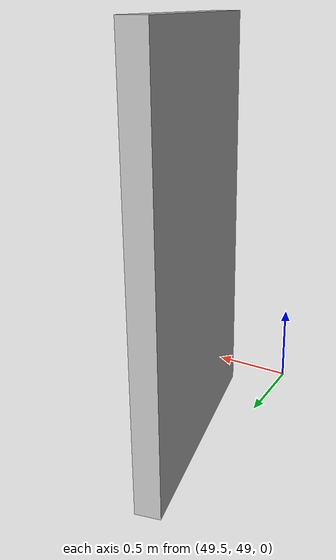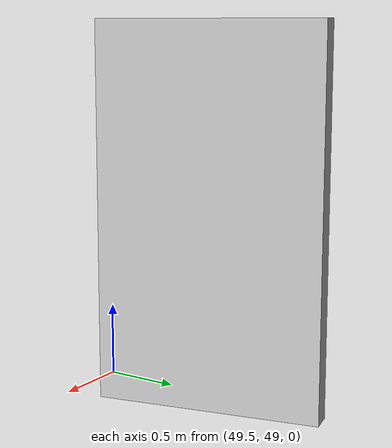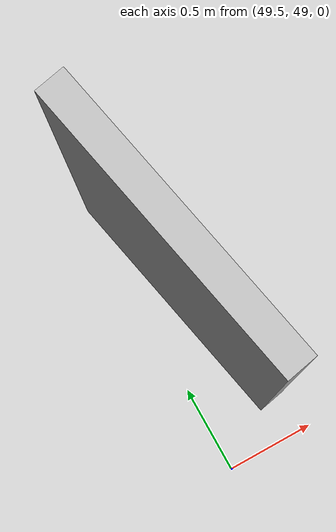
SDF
<?xml version="1.0" ?>
<sdf version="1.6">
  <model name="sps_0221">
    <pose frame="">0 0 0 0 -0 0</pose>
    <static>0</static>
    <self_collide>0</self_collide>
    <allow_auto_disable>0</allow_auto_disable>
    <link name="Wall10610">
      <kinematic>0</kinematic>
      <gravity>1</gravity>
      <self_collide>0</self_collide>
      <collision name="collision">
        <geometry>
          <box>
            <size>1.50358 0.15 2.5</size>
          </box>
        </geometry>
        <pose frame="">0 0 0 0 -0 0</pose>
      </collision>
      <visual name="visual">
        <geometry>
          <box>
            <size>1.50358 0.15 2.5</size>
          </box>
        </geometry>
        <pose frame="">0 0 0 0 -0 0</pose>
        <cast_shadows>1</cast_shadows>
        <transparency>0.0</transparency>
      </visual>
      <pose frame="">49.7254 49.9538 1.25 0 0 -1.36624</pose>
    </link>
  </model>
</sdf>
